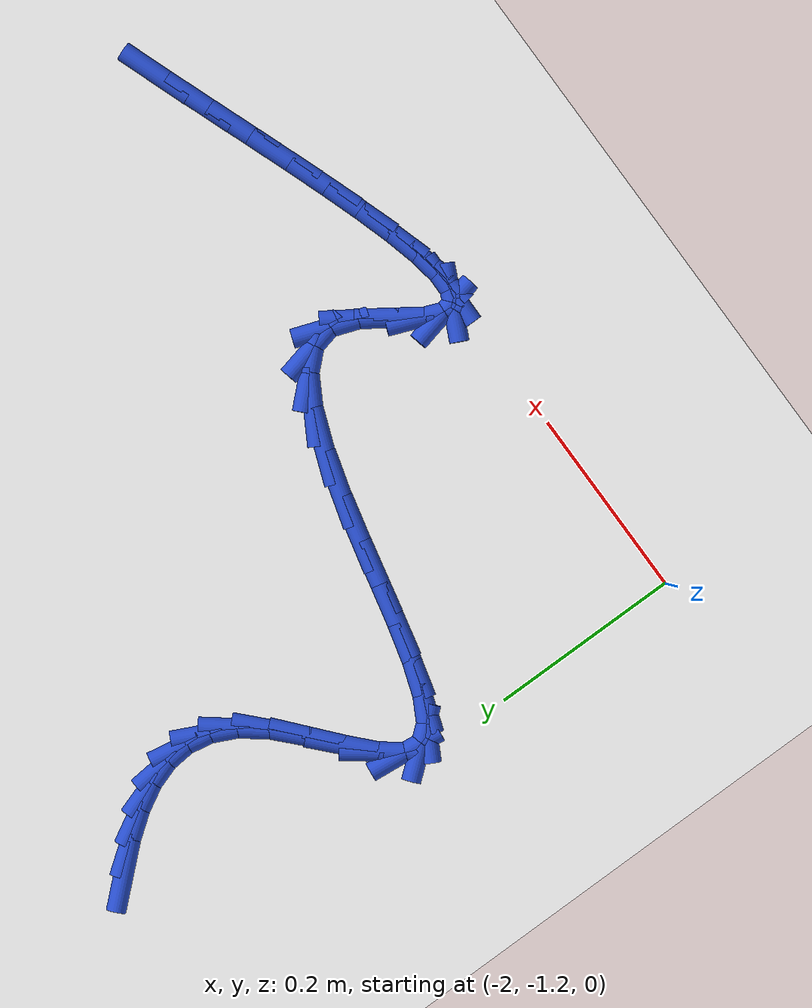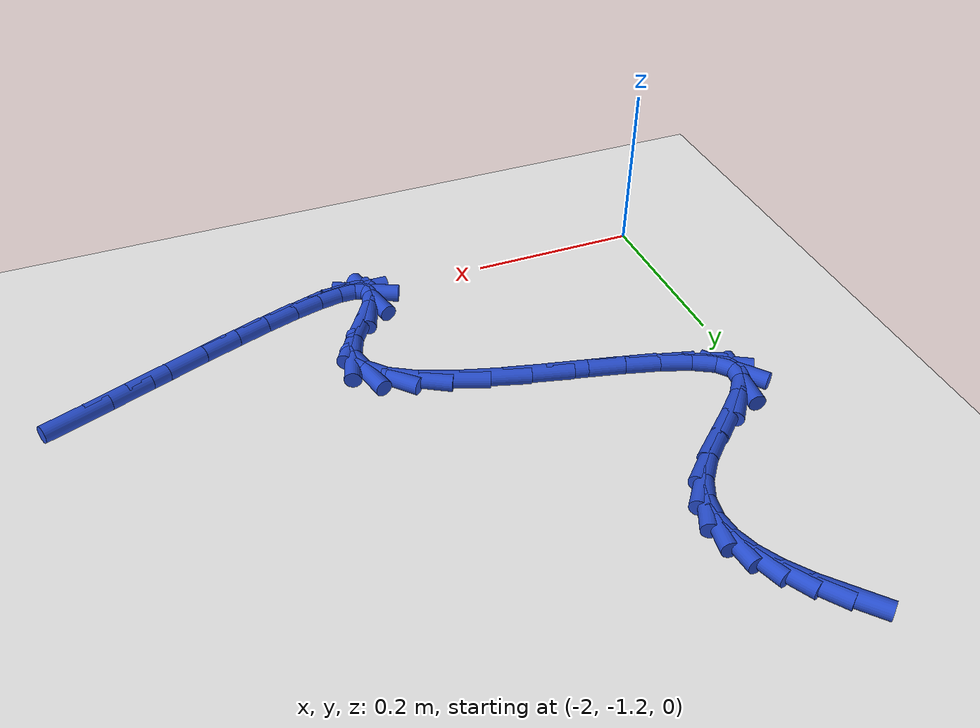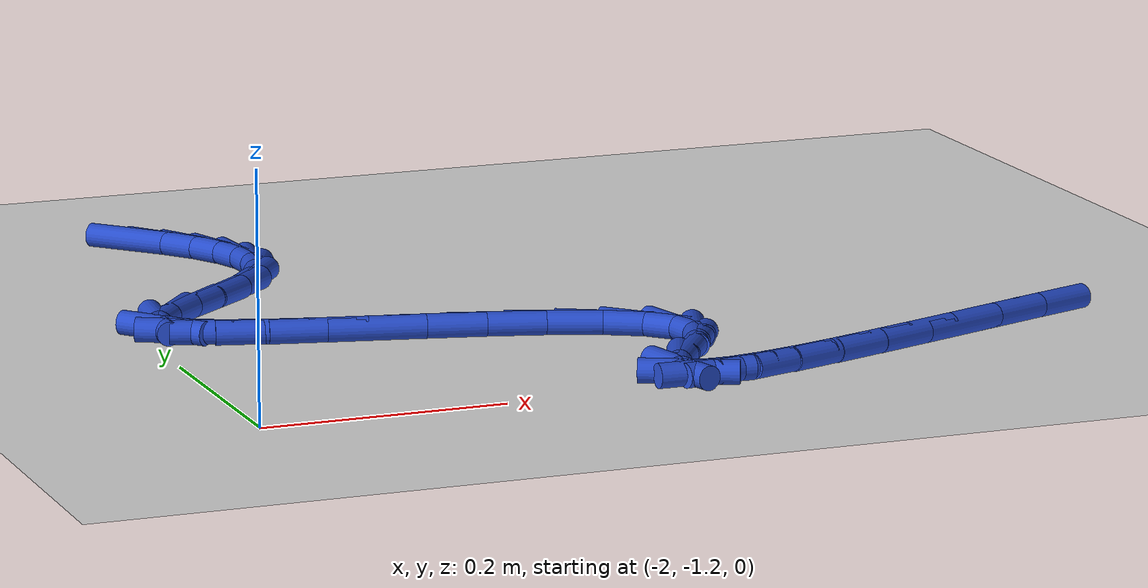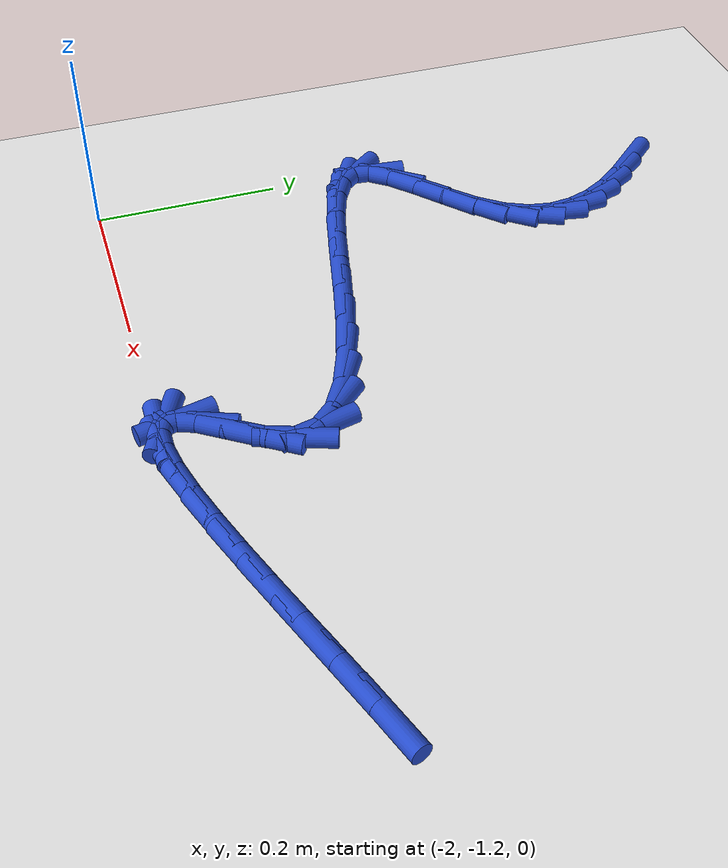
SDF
<sdf version="1.6">
 <world name="default">
  <model name="ground_plane">
   <static>1</static>
   <link name="link">
    <collision name="collision">
     <geometry><plane><normal>0 0 1</normal><size>100 100</size></plane></geometry>
     <surface><friction><ode><mu>100</mu><mu2>50</mu2></ode></friction></surface>
    </collision>
    <visual name="visual">
     <cast_shadows>0</cast_shadows>
     <geometry><plane><normal>0 0 1</normal><size>100 100</size></plane></geometry>
     <material>
      <script><uri>file://media/materials/scripts/gazebo.material</uri><name>Gazebo/WhiteGlow</name></script>
     </material>
    </visual>
   </link>
  </model>
  <model name="line">
   <link name="link_141">
    <pose>-1.9131726988512918 -0.5912283331426598 0.01 0 1.57 -0.835478326849794</pose>
    <collision name="collision">
     <geometry><cylinder><radius>0.01</radius><length>0.08</length></cylinder></geometry>
    </collision>
    <visual name="visual">
     <material>
      <script><name>Gazebo/Blue</name><uri>file://media/materials/scripts/gazebo.material</uri></script>
     </material>
     <geometry><cylinder><radius>0.01</radius><length>0.08</length></cylinder></geometry>
    </visual>
   </link>
   <link name="link_142">
    <pose>-1.890215518334751 -0.6166082701891598 0.01 0 1.57 -0.9325717411991244</pose>
    <collision name="collision">
     <geometry><cylinder><radius>0.01</radius><length>0.08</length></cylinder></geometry>
    </collision>
    <visual name="visual">
     <material>
      <script><name>Gazebo/Blue</name><uri>file://media/materials/scripts/gazebo.material</uri></script>
     </material>
     <geometry><cylinder><radius>0.01</radius><length>0.08</length></cylinder></geometry>
    </visual>
   </link>
   <link name="link_143">
    <pose>-1.871458926395983 -0.6418939253978295 0.01 0 1.57 -1.067513322127789</pose>
    <collision name="collision">
     <geometry><cylinder><radius>0.01</radius><length>0.08</length></cylinder></geometry>
    </collision>
    <visual name="visual">
     <material>
      <script><name>Gazebo/Blue</name><uri>file://media/materials/scripts/gazebo.material</uri></script>
     </material>
     <geometry><cylinder><radius>0.01</radius><length>0.08</length></cylinder></geometry>
    </visual>
   </link>
   <link name="link_144">
    <pose>-1.8575637183790488 -0.6671316482332584 0.01 0 1.57 -1.2504379177535625</pose>
    <collision name="collision">
     <geometry><cylinder><radius>0.01</radius><length>0.08</length></cylinder></geometry>
    </collision>
    <visual name="visual">
     <material>
      <script><name>Gazebo/Blue</name><uri>file://media/materials/scripts/gazebo.material</uri></script>
     </material>
     <geometry><cylinder><radius>0.01</radius><length>0.08</length></cylinder></geometry>
    </visual>
   </link>
   <link name="link_145">
    <pose>-1.8491906896280095 -0.6923677881600362 0.01 0 1.57 -1.4843832772804195</pose>
    <collision name="collision">
     <geometry><cylinder><radius>0.01</radius><length>0.08</length></cylinder></geometry>
    </collision>
    <visual name="visual">
     <material>
      <script><name>Gazebo/Blue</name><uri>file://media/materials/scripts/gazebo.material</uri></script>
     </material>
     <geometry><cylinder><radius>0.01</radius><length>0.08</length></cylinder></geometry>
    </visual>
   </link>
   <link name="link_146">
    <pose>-1.8470006354869266 -0.7176486946427523 0.01 0 1.57 1.389393489015727</pose>
    <collision name="collision">
     <geometry><cylinder><radius>0.01</radius><length>0.08</length></cylinder></geometry>
    </collision>
    <visual name="visual">
     <material>
      <script><name>Gazebo/Blue</name><uri>file://media/materials/scripts/gazebo.material</uri></script>
     </material>
     <geometry><cylinder><radius>0.01</radius><length>0.08</length></cylinder></geometry>
    </visual>
   </link>
   <link name="link_147">
    <pose>-1.8516543512998624 -0.743020717145997 0.01 0 1.57 1.1260286767753906</pose>
    <collision name="collision">
     <geometry><cylinder><radius>0.01</radius><length>0.08</length></cylinder></geometry>
    </collision>
    <visual name="visual">
     <material>
      <script><name>Gazebo/Blue</name><uri>file://media/materials/scripts/gazebo.material</uri></script>
     </material>
     <geometry><cylinder><radius>0.01</radius><length>0.08</length></cylinder></geometry>
    </visual>
   </link>
   <link name="link_148">
    <pose>-1.863812632410877 -0.768530205134359 0.01 0 1.57 0.9018691219242619</pose>
    <collision name="collision">
     <geometry><cylinder><radius>0.01</radius><length>0.08</length></cylinder></geometry>
    </collision>
    <visual name="visual">
     <material>
      <script><name>Gazebo/Blue</name><uri>file://media/materials/scripts/gazebo.material</uri></script>
     </material>
     <geometry><cylinder><radius>0.01</radius><length>0.08</length></cylinder></geometry>
    </visual>
   </link>
   <link name="link_149">
    <pose>-1.8841219735775503 -0.7942216624330652 0.01 0 1.57 0.7564901888566852</pose>
    <collision name="collision">
     <geometry><cylinder><radius>0.01</radius><length>0.08</length></cylinder></geometry>
    </collision>
    <visual name="visual">
     <material>
      <script><name>Gazebo/Blue</name><uri>file://media/materials/scripts/gazebo.material</uri></script>
     </material>
     <geometry><cylinder><radius>0.01</radius><length>0.08</length></cylinder></geometry>
    </visual>
   </link>
   <link name="link_150">
    <pose>-1.9113227715902432 -0.8198935911077971 0.01 0 1.57 0.710126430737968</pose>
    <collision name="collision">
     <geometry><cylinder><radius>0.01</radius><length>0.08</length></cylinder></geometry>
    </collision>
    <visual name="visual">
     <material>
      <script><name>Gazebo/Blue</name><uri>file://media/materials/scripts/gazebo.material</uri></script>
     </material>
     <geometry><cylinder><radius>0.01</radius><length>0.08</length></cylinder></geometry>
    </visual>
   </link>
   <link name="link_151">
    <pose>-1.9403550033081498 -0.844854009520795 0.01 0 1.57 0.7474612223397338</pose>
    <collision name="collision">
     <geometry><cylinder><radius>0.01</radius><length>0.08</length></cylinder></geometry>
    </collision>
    <visual name="visual">
     <material>
      <script><name>Gazebo/Blue</name><uri>file://media/materials/scripts/gazebo.material</uri></script>
     </material>
     <geometry><cylinder><radius>0.01</radius><length>0.08</length></cylinder></geometry>
    </visual>
   </link>
   <link name="link_152">
    <pose>-1.9657079340260826 -0.8683527670210617 0.01 0 1.57 0.9213781728992658</pose>
    <collision name="collision">
     <geometry><cylinder><radius>0.01</radius><length>0.08</length></cylinder></geometry>
    </collision>
    <visual name="visual">
     <material>
      <script><name>Gazebo/Blue</name><uri>file://media/materials/scripts/gazebo.material</uri></script>
     </material>
     <geometry><cylinder><radius>0.01</radius><length>0.08</length></cylinder></geometry>
    </visual>
   </link>
   <link name="link_153">
    <pose>-1.9818708290388558 -0.8896397129576011 0.01 0 1.57 1.4675287783065967</pose>
    <collision name="collision">
     <geometry><cylinder><radius>0.01</radius><length>0.08</length></cylinder></geometry>
    </collision>
    <visual name="visual">
     <material>
      <script><name>Gazebo/Blue</name><uri>file://media/materials/scripts/gazebo.material</uri></script>
     </material>
     <geometry><cylinder><radius>0.01</radius><length>0.08</length></cylinder></geometry>
    </visual>
   </link>
   <link name="link_154">
    <pose>-1.9837776179068993 -0.9080385803140013 0.01 0 1.57 -0.8885205254914023</pose>
    <collision name="collision">
     <geometry><cylinder><radius>0.01</radius><length>0.08</length></cylinder></geometry>
    </collision>
    <visual name="visual">
     <material>
      <script><name>Gazebo/Blue</name><uri>file://media/materials/scripts/gazebo.material</uri></script>
     </material>
     <geometry><cylinder><radius>0.01</radius><length>0.08</length></cylinder></geometry>
    </visual>
   </link>
   <link name="link_155">
    <pose>-1.971087681536206 -0.9236582641555718 0.01 0 1.57 -0.4964909706014207</pose>
    <collision name="collision">
     <geometry><cylinder><radius>0.01</radius><length>0.08</length></cylinder></geometry>
    </collision>
    <visual name="visual">
     <material>
      <script><name>Gazebo/Blue</name><uri>file://media/materials/scripts/gazebo.material</uri></script>
     </material>
     <geometry><cylinder><radius>0.01</radius><length>0.08</length></cylinder></geometry>
    </visual>
   </link>
   <link name="link_156">
    <pose>-1.9463107868989364 -0.9370812682875641 0.01 0 1.57 -0.3316086914916922</pose>
    <collision name="collision">
     <geometry><cylinder><radius>0.01</radius><length>0.08</length></cylinder></geometry>
    </collision>
    <visual name="visual">
     <material>
      <script><name>Gazebo/Blue</name><uri>file://media/materials/scripts/gazebo.material</uri></script>
     </material>
     <geometry><cylinder><radius>0.01</radius><length>0.08</length></cylinder></geometry>
    </visual>
   </link>
   <link name="link_157">
    <pose>-1.9119960436289747 -0.9488966335344308 0.01 0 1.57 -0.2556798001386819</pose>
    <collision name="collision">
     <geometry><cylinder><radius>0.01</radius><length>0.08</length></cylinder></geometry>
    </collision>
    <visual name="visual">
     <material>
      <script><name>Gazebo/Blue</name><uri>file://media/materials/scripts/gazebo.material</uri></script>
     </material>
     <geometry><cylinder><radius>0.01</radius><length>0.08</length></cylinder></geometry>
    </visual>
   </link>
   <link name="link_158">
    <pose>-1.8706925613602052 -0.9596934007206238 0.01 0 1.57 -0.22287468418880402</pose>
    <collision name="collision">
     <geometry><cylinder><radius>0.01</radius><length>0.08</length></cylinder></geometry>
    </collision>
    <visual name="visual">
     <material>
      <script><name>Gazebo/Blue</name><uri>file://media/materials/scripts/gazebo.material</uri></script>
     </material>
     <geometry><cylinder><radius>0.01</radius><length>0.08</length></cylinder></geometry>
    </visual>
   </link>
   <link name="link_159">
    <pose>-1.824949449726513 -0.9700606106705966 0.01 0 1.57 -0.21749715369521513</pose>
    <collision name="collision">
     <geometry><cylinder><radius>0.01</radius><length>0.08</length></cylinder></geometry>
    </collision>
    <visual name="visual">
     <material>
      <script><name>Gazebo/Blue</name><uri>file://media/materials/scripts/gazebo.material</uri></script>
     </material>
     <geometry><cylinder><radius>0.01</radius><length>0.08</length></cylinder></geometry>
    </visual>
   </link>
   <link name="link_160">
    <pose>-1.7773158183617817 -0.9805873042088006 0.01 0 1.57 -0.23556929580622202</pose>
    <collision name="collision">
     <geometry><cylinder><radius>0.01</radius><length>0.08</length></cylinder></geometry>
    </collision>
    <visual name="visual">
     <material>
      <script><name>Gazebo/Blue</name><uri>file://media/materials/scripts/gazebo.material</uri></script>
     </material>
     <geometry><cylinder><radius>0.01</radius><length>0.08</length></cylinder></geometry>
    </visual>
   </link>
   <link name="link_161">
    <pose>-1.7303407768998962 -0.9918625221596891 0.01 0 1.57 -0.28057590774571983</pose>
    <collision name="collision">
     <geometry><cylinder><radius>0.01</radius><length>0.08</length></cylinder></geometry>
    </collision>
    <visual name="visual">
     <material>
      <script><name>Gazebo/Blue</name><uri>file://media/materials/scripts/gazebo.material</uri></script>
     </material>
     <geometry><cylinder><radius>0.01</radius><length>0.08</length></cylinder></geometry>
    </visual>
   </link>
   <link name="link_162">
    <pose>-1.6865734349747405 -1.0044753053477147 0.01 0 1.57 -0.3653380184056535</pose>
    <collision name="collision">
     <geometry><cylinder><radius>0.01</radius><length>0.08</length></cylinder></geometry>
    </collision>
    <visual name="visual">
     <material>
      <script><name>Gazebo/Blue</name><uri>file://media/materials/scripts/gazebo.material</uri></script>
     </material>
     <geometry><cylinder><radius>0.01</radius><length>0.08</length></cylinder></geometry>
    </visual>
   </link>
   <link name="link_163">
    <pose>-1.648562902220201 -1.0190146945973293 0.01 0 1.57 -0.5211985905854003</pose>
    <collision name="collision">
     <geometry><cylinder><radius>0.01</radius><length>0.08</length></cylinder></geometry>
    </collision>
    <visual name="visual">
     <material>
      <script><name>Gazebo/Blue</name><uri>file://media/materials/scripts/gazebo.material</uri></script>
     </material>
     <geometry><cylinder><radius>0.01</radius><length>0.08</length></cylinder></geometry>
    </visual>
   </link>
   <link name="link_164">
    <pose>-1.618858288270161 -1.0360697307329854 0.01 0 1.57 -0.8189708179762928</pose>
    <collision name="collision">
     <geometry><cylinder><radius>0.01</radius><length>0.08</length></cylinder></geometry>
    </collision>
    <visual name="visual">
     <material>
      <script><name>Gazebo/Blue</name><uri>file://media/materials/scripts/gazebo.material</uri></script>
     </material>
     <geometry><cylinder><radius>0.01</radius><length>0.08</length></cylinder></geometry>
    </visual>
   </link>
   <link name="link_165">
    <pose>-1.6000087027585057 -1.0562294545791362 0.01 0 1.57 -1.3463549094977532</pose>
    <collision name="collision">
     <geometry><cylinder><radius>0.01</radius><length>0.08</length></cylinder></geometry>
    </collision>
    <visual name="visual">
     <material>
      <script><name>Gazebo/Blue</name><uri>file://media/materials/scripts/gazebo.material</uri></script>
     </material>
     <geometry><cylinder><radius>0.01</radius><length>0.08</length></cylinder></geometry>
    </visual>
   </link>
   <link name="link_166">
    <pose>-1.5945632553191196 -1.0800829069602336 0.01 0 1.57 1.2280236895934284</pose>
    <collision name="collision">
     <geometry><cylinder><radius>0.01</radius><length>0.08</length></cylinder></geometry>
    </collision>
    <visual name="visual">
     <material>
      <script><name>Gazebo/Blue</name><uri>file://media/materials/scripts/gazebo.material</uri></script>
     </material>
     <geometry><cylinder><radius>0.01</radius><length>0.08</length></cylinder></geometry>
    </visual>
   </link>
   <link name="link_167">
    <pose>-1.6045271298752994 -1.1080039062553755 0.01 0 1.57 0.9817926142834114</pose>
    <collision name="collision">
     <geometry><cylinder><radius>0.01</radius><length>0.08</length></cylinder></geometry>
    </collision>
    <visual name="visual">
     <material>
      <script><name>Gazebo/Blue</name><uri>file://media/materials/scripts/gazebo.material</uri></script>
     </material>
     <geometry><cylinder><radius>0.01</radius><length>0.08</length></cylinder></geometry>
    </visual>
   </link>
   <link name="link_168">
    <pose>-1.6240801414731898 -1.1372699012609007 0.01 0 1.57 0.9713392016007473</pose>
    <collision name="collision">
     <geometry><cylinder><radius>0.01</radius><length>0.08</length></cylinder></geometry>
    </collision>
    <visual name="visual">
     <material>
      <script><name>Gazebo/Blue</name><uri>file://media/materials/scripts/gazebo.material</uri></script>
     </material>
     <geometry><cylinder><radius>0.01</radius><length>0.08</length></cylinder></geometry>
    </visual>
   </link>
   <link name="link_169">
    <pose>-1.6415582453599369 -1.1628473594709643 0.01 0 1.57 1.1900518631520645</pose>
    <collision name="collision">
     <geometry><cylinder><radius>0.01</radius><length>0.08</length></cylinder></geometry>
    </collision>
    <visual name="visual">
     <material>
      <script><name>Gazebo/Blue</name><uri>file://media/materials/scripts/gazebo.material</uri></script>
     </material>
     <geometry><cylinder><radius>0.01</radius><length>0.08</length></cylinder></geometry>
    </visual>
   </link>
   <link name="link_170">
    <pose>-1.6489732634154994 -1.181372112957993 0.01 0 1.57 -1.3482811504230192</pose>
    <collision name="collision">
     <geometry><cylinder><radius>0.01</radius><length>0.08</length></cylinder></geometry>
    </collision>
    <visual name="visual">
     <material>
      <script><name>Gazebo/Blue</name><uri>file://media/materials/scripts/gazebo.material</uri></script>
     </material>
     <geometry><cylinder><radius>0.01</radius><length>0.08</length></cylinder></geometry>
    </visual>
   </link>
   <link name="link_171">
    <pose>-1.6463221773716517 -1.1930890059959571 0.01 0 1.57 -0.44629286855941147</pose>
    <collision name="collision">
     <geometry><cylinder><radius>0.01</radius><length>0.08</length></cylinder></geometry>
    </collision>
    <visual name="visual">
     <material>
      <script><name>Gazebo/Blue</name><uri>file://media/materials/scripts/gazebo.material</uri></script>
     </material>
     <geometry><cylinder><radius>0.01</radius><length>0.08</length></cylinder></geometry>
    </visual>
   </link>
   <link name="link_172">
    <pose>-1.6346043044911598 -1.1986959033654325 0.01 0 1.57 -0.009843660334167115</pose>
    <collision name="collision">
     <geometry><cylinder><radius>0.01</radius><length>0.08</length></cylinder></geometry>
    </collision>
    <visual name="visual">
     <material>
      <script><name>Gazebo/Blue</name><uri>file://media/materials/scripts/gazebo.material</uri></script>
     </material>
     <geometry><cylinder><radius>0.01</radius><length>0.08</length></cylinder></geometry>
    </visual>
   </link>
   <link name="link_173">
    <pose>-1.6148189620367879 -1.1988906698469939 0.01 0 1.57 0.16673948894594362</pose>
    <collision name="collision">
     <geometry><cylinder><radius>0.01</radius><length>0.08</length></cylinder></geometry>
    </collision>
    <visual name="visual">
     <material>
      <script><name>Gazebo/Blue</name><uri>file://media/materials/scripts/gazebo.material</uri></script>
     </material>
     <geometry><cylinder><radius>0.01</radius><length>0.08</length></cylinder></geometry>
    </visual>
   </link>
   <link name="link_174">
    <pose>-1.5879654672712995 -1.1943711702212165 0.01 0 1.57 0.25368781770503523</pose>
    <collision name="collision">
     <geometry><cylinder><radius>0.01</radius><length>0.08</length></cylinder></geometry>
    </collision>
    <visual name="visual">
     <material>
      <script><name>Gazebo/Blue</name><uri>file://media/materials/scripts/gazebo.material</uri></script>
     </material>
     <geometry><cylinder><radius>0.01</radius><length>0.08</length></cylinder></geometry>
    </visual>
   </link>
   <link name="link_175">
    <pose>-1.5550431374574594 -1.1858352692686747 0.01 0 1.57 0.30245281926412115</pose>
    <collision name="collision">
     <geometry><cylinder><radius>0.01</radius><length>0.08</length></cylinder></geometry>
    </collision>
    <visual name="visual">
     <material>
      <script><name>Gazebo/Blue</name><uri>file://media/materials/scripts/gazebo.material</uri></script>
     </material>
     <geometry><cylinder><radius>0.01</radius><length>0.08</length></cylinder></geometry>
    </visual>
   </link>
   <link name="link_176">
    <pose>-1.5170512898580317 -1.1739808317699434 0.01 0 1.57 0.33144218554650623</pose>
    <collision name="collision">
     <geometry><cylinder><radius>0.01</radius><length>0.08</length></cylinder></geometry>
    </collision>
    <visual name="visual">
     <material>
      <script><name>Gazebo/Blue</name><uri>file://media/materials/scripts/gazebo.material</uri></script>
     </material>
     <geometry><cylinder><radius>0.01</radius><length>0.08</length></cylinder></geometry>
    </visual>
   </link>
   <link name="link_177">
    <pose>-1.4749892417357802 -1.1595057225055978 0.01 0 1.57 0.3484958577672908</pose>
    <collision name="collision">
     <geometry><cylinder><radius>0.01</radius><length>0.08</length></cylinder></geometry>
    </collision>
    <visual name="visual">
     <material>
      <script><name>Gazebo/Blue</name><uri>file://media/materials/scripts/gazebo.material</uri></script>
     </material>
     <geometry><cylinder><radius>0.01</radius><length>0.08</length></cylinder></geometry>
    </visual>
   </link>
   <link name="link_178">
    <pose>-1.42985631035347 -1.143107806256213 0.01 0 1.57 0.357305821523868</pose>
    <collision name="collision">
     <geometry><cylinder><radius>0.01</radius><length>0.08</length></cylinder></geometry>
    </collision>
    <visual name="visual">
     <material>
      <script><name>Gazebo/Blue</name><uri>file://media/materials/scripts/gazebo.material</uri></script>
     </material>
     <geometry><cylinder><radius>0.01</radius><length>0.08</length></cylinder></geometry>
    </visual>
   </link>
   <link name="link_179">
    <pose>-1.3826518129738656 -1.125484947802364 0.01 0 1.57 0.3596086075205514</pose>
    <collision name="collision">
     <geometry><cylinder><radius>0.01</radius><length>0.08</length></cylinder></geometry>
    </collision>
    <visual name="visual">
     <material>
      <script><name>Gazebo/Blue</name><uri>file://media/materials/scripts/gazebo.material</uri></script>
     </material>
     <geometry><cylinder><radius>0.01</radius><length>0.08</length></cylinder></geometry>
    </visual>
   </link>
   <link name="link_180">
    <pose>-1.3343750668597307 -1.1073350119246252 0.01 0 1.57 0.35601200151508755</pose>
    <collision name="collision">
     <geometry><cylinder><radius>0.01</radius><length>0.08</length></cylinder></geometry>
    </collision>
    <visual name="visual">
     <material>
      <script><name>Gazebo/Blue</name><uri>file://media/materials/scripts/gazebo.material</uri></script>
     </material>
     <geometry><cylinder><radius>0.01</radius><length>0.08</length></cylinder></geometry>
    </visual>
   </link>
   <link name="link_181">
    <pose>-1.2860253892738296 -1.0893558634035716 0.01 0 1.57 0.34626683753004917</pose>
    <collision name="collision">
     <geometry><cylinder><radius>0.01</radius><length>0.08</length></cylinder></geometry>
    </collision>
    <visual name="visual">
     <material>
      <script><name>Gazebo/Blue</name><uri>file://media/materials/scripts/gazebo.material</uri></script>
     </material>
     <geometry><cylinder><radius>0.01</radius><length>0.08</length></cylinder></geometry>
    </visual>
   </link>
  </model>
 </world>
</sdf>
